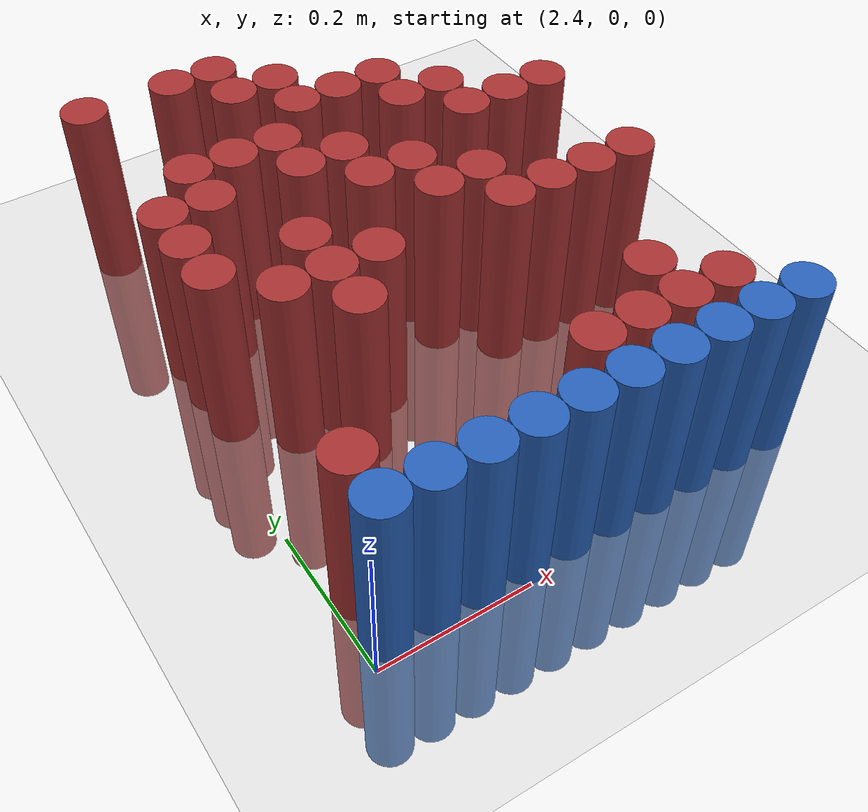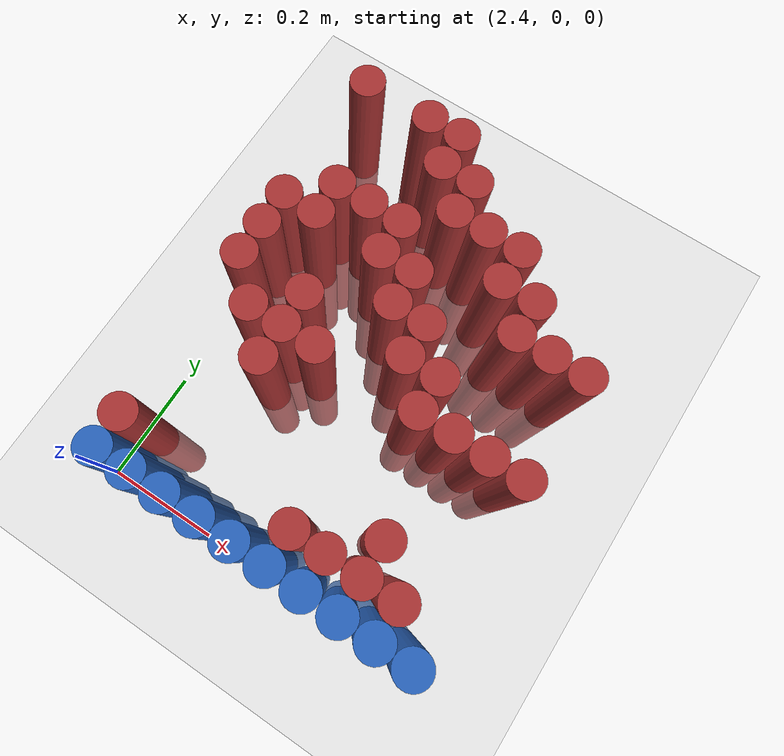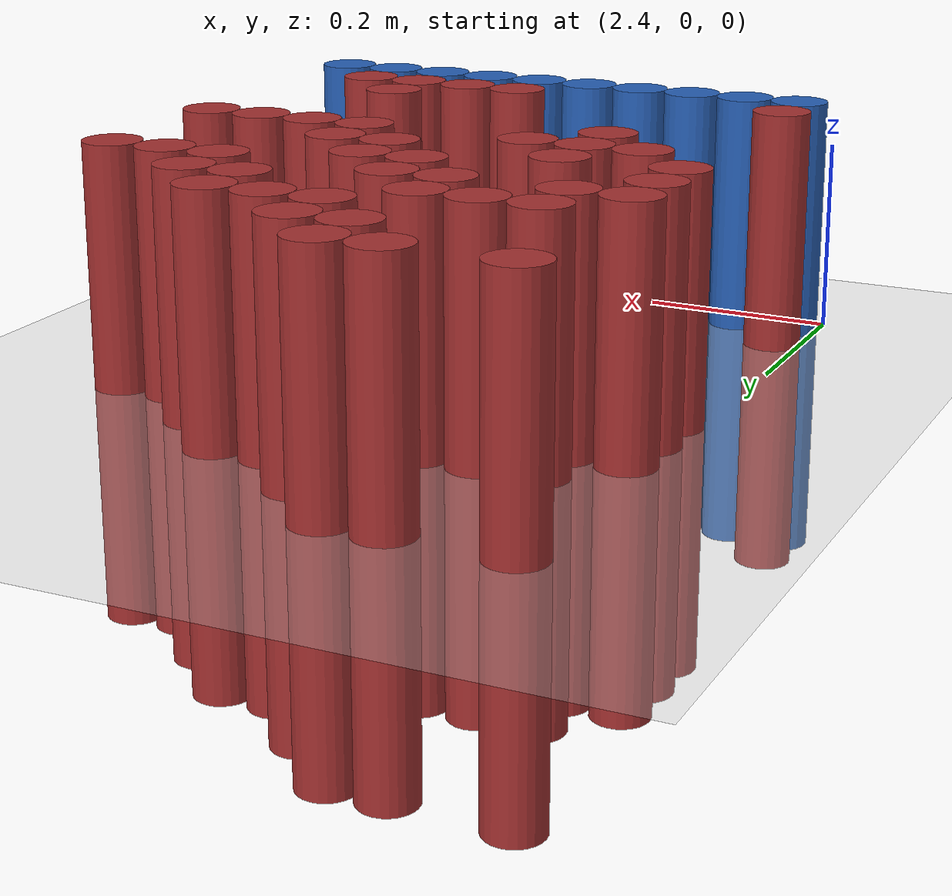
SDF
<sdf version="1.6">
 <world name="default">
  <model name="ground_plane">
   <static>1</static>
   <link name="link">
    <collision name="collision">
     <geometry><plane><normal>0 0 1</normal><size>100 100</size></plane></geometry>
     <surface><friction><ode><mu>100</mu><mu2>50</mu2></ode></friction></surface>
    </collision>
    <visual name="visual">
     <cast_shadows>0</cast_shadows>
     <geometry><plane><normal>0 0 1</normal><size>100 100</size></plane></geometry>
     <material>
      <script><uri>file://media/materials/scripts/gazebo.material</uri><name>Gazebo/Grey</name></script>
     </material>
    </visual>
   </link>
  </model>
  <model name="unit_cylinder_234">
   <static>1</static>
   <pose>2.430000 0.750000 0.000000 0.000000 0.000000 0.000000</pose>
   <link name="link">
    <inertial>
     <mass>1</mass>
     <inertia><ixx>0.145833</ixx><ixy>0</ixy><ixz>0</ixz><iyy>0.145833</iyy><iyz>0</iyz><izz>0.125</izz></inertia>
    </inertial>
    <collision name="collision">
     <geometry><cylinder><radius>0.030000</radius><length>0.5</length></cylinder></geometry>
    </collision>
    <visual name="visual">
     <geometry><cylinder><radius>0.030000</radius><length>0.5</length></cylinder></geometry>
     <material>
      <ambient>0.648000 0.192000 0.192000 1</ambient>
      <diffuse>0.648000 0.192000 0.192000 1</diffuse>
     </material>
     <material>
      <script><name>Gazebo/Grey</name><uri>file://media/materials/scripts/gazebo.material</uri></script>
     </material>
    </visual>
   </link>
  </model>
  <model name="unit_cylinder_235">
   <static>1</static>
   <pose>2.550000 0.750000 0.000000 0.000000 0.000000 0.000000</pose>
   <link name="link">
    <inertial>
     <mass>1</mass>
     <inertia><ixx>0.145833</ixx><ixy>0</ixy><ixz>0</ixz><iyy>0.145833</iyy><iyz>0</iyz><izz>0.125</izz></inertia>
    </inertial>
    <collision name="collision">
     <geometry><cylinder><radius>0.030000</radius><length>0.5</length></cylinder></geometry>
    </collision>
    <visual name="visual">
     <geometry><cylinder><radius>0.030000</radius><length>0.5</length></cylinder></geometry>
     <material>
      <ambient>0.648000 0.192000 0.192000 1</ambient>
      <diffuse>0.648000 0.192000 0.192000 1</diffuse>
     </material>
     <material>
      <script><name>Gazebo/Grey</name><uri>file://media/materials/scripts/gazebo.material</uri></script>
     </material>
    </visual>
   </link>
  </model>
  <model name="unit_cylinder_236">
   <static>1</static>
   <pose>2.610000 0.750000 0.000000 0.000000 0.000000 0.000000</pose>
   <link name="link">
    <inertial>
     <mass>1</mass>
     <inertia><ixx>0.145833</ixx><ixy>0</ixy><ixz>0</ixz><iyy>0.145833</iyy><iyz>0</iyz><izz>0.125</izz></inertia>
    </inertial>
    <collision name="collision">
     <geometry><cylinder><radius>0.030000</radius><length>0.5</length></cylinder></geometry>
    </collision>
    <visual name="visual">
     <geometry><cylinder><radius>0.030000</radius><length>0.5</length></cylinder></geometry>
     <material>
      <ambient>0.648000 0.192000 0.192000 1</ambient>
      <diffuse>0.648000 0.192000 0.192000 1</diffuse>
     </material>
     <material>
      <script><name>Gazebo/Grey</name><uri>file://media/materials/scripts/gazebo.material</uri></script>
     </material>
    </visual>
   </link>
  </model>
  <model name="unit_cylinder_238">
   <static>1</static>
   <pose>2.610000 0.690000 0.000000 0.000000 0.000000 0.000000</pose>
   <link name="link">
    <inertial>
     <mass>1</mass>
     <inertia><ixx>0.145833</ixx><ixy>0</ixy><ixz>0</ixz><iyy>0.145833</iyy><iyz>0</iyz><izz>0.125</izz></inertia>
    </inertial>
    <collision name="collision">
     <geometry><cylinder><radius>0.030000</radius><length>0.5</length></cylinder></geometry>
    </collision>
    <visual name="visual">
     <geometry><cylinder><radius>0.030000</radius><length>0.5</length></cylinder></geometry>
     <material>
      <ambient>0.648000 0.192000 0.192000 1</ambient>
      <diffuse>0.648000 0.192000 0.192000 1</diffuse>
     </material>
     <material>
      <script><name>Gazebo/Grey</name><uri>file://media/materials/scripts/gazebo.material</uri></script>
     </material>
    </visual>
   </link>
  </model>
  <model name="unit_cylinder_239">
   <static>1</static>
   <pose>2.670000 0.690000 0.000000 0.000000 0.000000 0.000000</pose>
   <link name="link">
    <inertial>
     <mass>1</mass>
     <inertia><ixx>0.145833</ixx><ixy>0</ixy><ixz>0</ixz><iyy>0.145833</iyy><iyz>0</iyz><izz>0.125</izz></inertia>
    </inertial>
    <collision name="collision">
     <geometry><cylinder><radius>0.030000</radius><length>0.5</length></cylinder></geometry>
    </collision>
    <visual name="visual">
     <geometry><cylinder><radius>0.030000</radius><length>0.5</length></cylinder></geometry>
     <material>
      <ambient>0.648000 0.192000 0.192000 1</ambient>
      <diffuse>0.648000 0.192000 0.192000 1</diffuse>
     </material>
     <material>
      <script><name>Gazebo/Grey</name><uri>file://media/materials/scripts/gazebo.material</uri></script>
     </material>
    </visual>
   </link>
  </model>
  <model name="unit_cylinder_244">
   <static>1</static>
   <pose>2.670000 0.630000 0.000000 0.000000 0.000000 0.000000</pose>
   <link name="link">
    <inertial>
     <mass>1</mass>
     <inertia><ixx>0.145833</ixx><ixy>0</ixy><ixz>0</ixz><iyy>0.145833</iyy><iyz>0</iyz><izz>0.125</izz></inertia>
    </inertial>
    <collision name="collision">
     <geometry><cylinder><radius>0.030000</radius><length>0.5</length></cylinder></geometry>
    </collision>
    <visual name="visual">
     <geometry><cylinder><radius>0.030000</radius><length>0.5</length></cylinder></geometry>
     <material>
      <ambient>0.648000 0.192000 0.192000 1</ambient>
      <diffuse>0.648000 0.192000 0.192000 1</diffuse>
     </material>
     <material>
      <script><name>Gazebo/Grey</name><uri>file://media/materials/scripts/gazebo.material</uri></script>
     </material>
    </visual>
   </link>
  </model>
  <model name="unit_cylinder_245">
   <static>1</static>
   <pose>2.730000 0.630000 0.000000 0.000000 0.000000 0.000000</pose>
   <link name="link">
    <inertial>
     <mass>1</mass>
     <inertia><ixx>0.145833</ixx><ixy>0</ixy><ixz>0</ixz><iyy>0.145833</iyy><iyz>0</iyz><izz>0.125</izz></inertia>
    </inertial>
    <collision name="collision">
     <geometry><cylinder><radius>0.030000</radius><length>0.5</length></cylinder></geometry>
    </collision>
    <visual name="visual">
     <geometry><cylinder><radius>0.030000</radius><length>0.5</length></cylinder></geometry>
     <material>
      <ambient>0.648000 0.192000 0.192000 1</ambient>
      <diffuse>0.648000 0.192000 0.192000 1</diffuse>
     </material>
     <material>
      <script><name>Gazebo/Grey</name><uri>file://media/materials/scripts/gazebo.material</uri></script>
     </material>
    </visual>
   </link>
  </model>
  <model name="unit_cylinder_246">
   <static>1</static>
   <pose>2.790000 0.630000 0.000000 0.000000 0.000000 0.000000</pose>
   <link name="link">
    <inertial>
     <mass>1</mass>
     <inertia><ixx>0.145833</ixx><ixy>0</ixy><ixz>0</ixz><iyy>0.145833</iyy><iyz>0</iyz><izz>0.125</izz></inertia>
    </inertial>
    <collision name="collision">
     <geometry><cylinder><radius>0.030000</radius><length>0.5</length></cylinder></geometry>
    </collision>
    <visual name="visual">
     <geometry><cylinder><radius>0.030000</radius><length>0.5</length></cylinder></geometry>
     <material>
      <ambient>0.648000 0.192000 0.192000 1</ambient>
      <diffuse>0.648000 0.192000 0.192000 1</diffuse>
     </material>
     <material>
      <script><name>Gazebo/Grey</name><uri>file://media/materials/scripts/gazebo.material</uri></script>
     </material>
    </visual>
   </link>
  </model>
  <model name="unit_cylinder_253">
   <static>1</static>
   <pose>2.490000 0.570000 0.000000 0.000000 0.000000 0.000000</pose>
   <link name="link">
    <inertial>
     <mass>1</mass>
     <inertia><ixx>0.145833</ixx><ixy>0</ixy><ixz>0</ixz><iyy>0.145833</iyy><iyz>0</iyz><izz>0.125</izz></inertia>
    </inertial>
    <collision name="collision">
     <geometry><cylinder><radius>0.030000</radius><length>0.5</length></cylinder></geometry>
    </collision>
    <visual name="visual">
     <geometry><cylinder><radius>0.030000</radius><length>0.5</length></cylinder></geometry>
     <material>
      <ambient>0.648000 0.192000 0.192000 1</ambient>
      <diffuse>0.648000 0.192000 0.192000 1</diffuse>
     </material>
     <material>
      <script><name>Gazebo/Grey</name><uri>file://media/materials/scripts/gazebo.material</uri></script>
     </material>
    </visual>
   </link>
  </model>
  <model name="unit_cylinder_254">
   <static>1</static>
   <pose>2.550000 0.570000 0.000000 0.000000 0.000000 0.000000</pose>
   <link name="link">
    <inertial>
     <mass>1</mass>
     <inertia><ixx>0.145833</ixx><ixy>0</ixy><ixz>0</ixz><iyy>0.145833</iyy><iyz>0</iyz><izz>0.125</izz></inertia>
    </inertial>
    <collision name="collision">
     <geometry><cylinder><radius>0.030000</radius><length>0.5</length></cylinder></geometry>
    </collision>
    <visual name="visual">
     <geometry><cylinder><radius>0.030000</radius><length>0.5</length></cylinder></geometry>
     <material>
      <ambient>0.648000 0.192000 0.192000 1</ambient>
      <diffuse>0.648000 0.192000 0.192000 1</diffuse>
     </material>
     <material>
      <script><name>Gazebo/Grey</name><uri>file://media/materials/scripts/gazebo.material</uri></script>
     </material>
    </visual>
   </link>
  </model>
  <model name="unit_cylinder_255">
   <static>1</static>
   <pose>2.610000 0.570000 0.000000 0.000000 0.000000 0.000000</pose>
   <link name="link">
    <inertial>
     <mass>1</mass>
     <inertia><ixx>0.145833</ixx><ixy>0</ixy><ixz>0</ixz><iyy>0.145833</iyy><iyz>0</iyz><izz>0.125</izz></inertia>
    </inertial>
    <collision name="collision">
     <geometry><cylinder><radius>0.030000</radius><length>0.5</length></cylinder></geometry>
    </collision>
    <visual name="visual">
     <geometry><cylinder><radius>0.030000</radius><length>0.5</length></cylinder></geometry>
     <material>
      <ambient>0.648000 0.192000 0.192000 1</ambient>
      <diffuse>0.648000 0.192000 0.192000 1</diffuse>
     </material>
     <material>
      <script><name>Gazebo/Grey</name><uri>file://media/materials/scripts/gazebo.material</uri></script>
     </material>
    </visual>
   </link>
  </model>
  <model name="unit_cylinder_256">
   <static>1</static>
   <pose>2.790000 0.570000 0.000000 0.000000 0.000000 0.000000</pose>
   <link name="link">
    <inertial>
     <mass>1</mass>
     <inertia><ixx>0.145833</ixx><ixy>0</ixy><ixz>0</ixz><iyy>0.145833</iyy><iyz>0</iyz><izz>0.125</izz></inertia>
    </inertial>
    <collision name="collision">
     <geometry><cylinder><radius>0.030000</radius><length>0.5</length></cylinder></geometry>
    </collision>
    <visual name="visual">
     <geometry><cylinder><radius>0.030000</radius><length>0.5</length></cylinder></geometry>
     <material>
      <ambient>0.648000 0.192000 0.192000 1</ambient>
      <diffuse>0.648000 0.192000 0.192000 1</diffuse>
     </material>
     <material>
      <script><name>Gazebo/Grey</name><uri>file://media/materials/scripts/gazebo.material</uri></script>
     </material>
    </visual>
   </link>
  </model>
  <model name="unit_cylinder_257">
   <static>1</static>
   <pose>2.850000 0.570000 0.000000 0.000000 0.000000 0.000000</pose>
   <link name="link">
    <inertial>
     <mass>1</mass>
     <inertia><ixx>0.145833</ixx><ixy>0</ixy><ixz>0</ixz><iyy>0.145833</iyy><iyz>0</iyz><izz>0.125</izz></inertia>
    </inertial>
    <collision name="collision">
     <geometry><cylinder><radius>0.030000</radius><length>0.5</length></cylinder></geometry>
    </collision>
    <visual name="visual">
     <geometry><cylinder><radius>0.030000</radius><length>0.5</length></cylinder></geometry>
     <material>
      <ambient>0.648000 0.192000 0.192000 1</ambient>
      <diffuse>0.648000 0.192000 0.192000 1</diffuse>
     </material>
     <material>
      <script><name>Gazebo/Grey</name><uri>file://media/materials/scripts/gazebo.material</uri></script>
     </material>
    </visual>
   </link>
  </model>
  <model name="unit_cylinder_264">
   <static>1</static>
   <pose>2.430000 0.510000 0.000000 0.000000 0.000000 0.000000</pose>
   <link name="link">
    <inertial>
     <mass>1</mass>
     <inertia><ixx>0.145833</ixx><ixy>0</ixy><ixz>0</ixz><iyy>0.145833</iyy><iyz>0</iyz><izz>0.125</izz></inertia>
    </inertial>
    <collision name="collision">
     <geometry><cylinder><radius>0.030000</radius><length>0.5</length></cylinder></geometry>
    </collision>
    <visual name="visual">
     <geometry><cylinder><radius>0.030000</radius><length>0.5</length></cylinder></geometry>
     <material>
      <ambient>0.648000 0.192000 0.192000 1</ambient>
      <diffuse>0.648000 0.192000 0.192000 1</diffuse>
     </material>
     <material>
      <script><name>Gazebo/Grey</name><uri>file://media/materials/scripts/gazebo.material</uri></script>
     </material>
    </visual>
   </link>
  </model>
  <model name="unit_cylinder_265">
   <static>1</static>
   <pose>2.490000 0.510000 0.000000 0.000000 0.000000 0.000000</pose>
   <link name="link">
    <inertial>
     <mass>1</mass>
     <inertia><ixx>0.145833</ixx><ixy>0</ixy><ixz>0</ixz><iyy>0.145833</iyy><iyz>0</iyz><izz>0.125</izz></inertia>
    </inertial>
    <collision name="collision">
     <geometry><cylinder><radius>0.030000</radius><length>0.5</length></cylinder></geometry>
    </collision>
    <visual name="visual">
     <geometry><cylinder><radius>0.030000</radius><length>0.5</length></cylinder></geometry>
     <material>
      <ambient>0.648000 0.192000 0.192000 1</ambient>
      <diffuse>0.648000 0.192000 0.192000 1</diffuse>
     </material>
     <material>
      <script><name>Gazebo/Grey</name><uri>file://media/materials/scripts/gazebo.material</uri></script>
     </material>
    </visual>
   </link>
  </model>
  <model name="unit_cylinder_266">
   <static>1</static>
   <pose>2.610000 0.510000 0.000000 0.000000 0.000000 0.000000</pose>
   <link name="link">
    <inertial>
     <mass>1</mass>
     <inertia><ixx>0.145833</ixx><ixy>0</ixy><ixz>0</ixz><iyy>0.145833</iyy><iyz>0</iyz><izz>0.125</izz></inertia>
    </inertial>
    <collision name="collision">
     <geometry><cylinder><radius>0.030000</radius><length>0.5</length></cylinder></geometry>
    </collision>
    <visual name="visual">
     <geometry><cylinder><radius>0.030000</radius><length>0.5</length></cylinder></geometry>
     <material>
      <ambient>0.648000 0.192000 0.192000 1</ambient>
      <diffuse>0.648000 0.192000 0.192000 1</diffuse>
     </material>
     <material>
      <script><name>Gazebo/Grey</name><uri>file://media/materials/scripts/gazebo.material</uri></script>
     </material>
    </visual>
   </link>
  </model>
  <model name="unit_cylinder_267">
   <static>1</static>
   <pose>2.670000 0.510000 0.000000 0.000000 0.000000 0.000000</pose>
   <link name="link">
    <inertial>
     <mass>1</mass>
     <inertia><ixx>0.145833</ixx><ixy>0</ixy><ixz>0</ixz><iyy>0.145833</iyy><iyz>0</iyz><izz>0.125</izz></inertia>
    </inertial>
    <collision name="collision">
     <geometry><cylinder><radius>0.030000</radius><length>0.5</length></cylinder></geometry>
    </collision>
    <visual name="visual">
     <geometry><cylinder><radius>0.030000</radius><length>0.5</length></cylinder></geometry>
     <material>
      <ambient>0.648000 0.192000 0.192000 1</ambient>
      <diffuse>0.648000 0.192000 0.192000 1</diffuse>
     </material>
     <material>
      <script><name>Gazebo/Grey</name><uri>file://media/materials/scripts/gazebo.material</uri></script>
     </material>
    </visual>
   </link>
  </model>
  <model name="unit_cylinder_268">
   <static>1</static>
   <pose>2.850000 0.510000 0.000000 0.000000 0.000000 0.000000</pose>
   <link name="link">
    <inertial>
     <mass>1</mass>
     <inertia><ixx>0.145833</ixx><ixy>0</ixy><ixz>0</ixz><iyy>0.145833</iyy><iyz>0</iyz><izz>0.125</izz></inertia>
    </inertial>
    <collision name="collision">
     <geometry><cylinder><radius>0.030000</radius><length>0.5</length></cylinder></geometry>
    </collision>
    <visual name="visual">
     <geometry><cylinder><radius>0.030000</radius><length>0.5</length></cylinder></geometry>
     <material>
      <ambient>0.648000 0.192000 0.192000 1</ambient>
      <diffuse>0.648000 0.192000 0.192000 1</diffuse>
     </material>
     <material>
      <script><name>Gazebo/Grey</name><uri>file://media/materials/scripts/gazebo.material</uri></script>
     </material>
    </visual>
   </link>
  </model>
  <model name="unit_cylinder_269">
   <static>1</static>
   <pose>2.910000 0.510000 0.000000 0.000000 0.000000 0.000000</pose>
   <link name="link">
    <inertial>
     <mass>1</mass>
     <inertia><ixx>0.145833</ixx><ixy>0</ixy><ixz>0</ixz><iyy>0.145833</iyy><iyz>0</iyz><izz>0.125</izz></inertia>
    </inertial>
    <collision name="collision">
     <geometry><cylinder><radius>0.030000</radius><length>0.5</length></cylinder></geometry>
    </collision>
    <visual name="visual">
     <geometry><cylinder><radius>0.030000</radius><length>0.5</length></cylinder></geometry>
     <material>
      <ambient>0.648000 0.192000 0.192000 1</ambient>
      <diffuse>0.648000 0.192000 0.192000 1</diffuse>
     </material>
     <material>
      <script><name>Gazebo/Grey</name><uri>file://media/materials/scripts/gazebo.material</uri></script>
     </material>
    </visual>
   </link>
  </model>
  <model name="unit_cylinder_270">
   <static>1</static>
   <pose>2.970000 0.510000 0.000000 0.000000 0.000000 0.000000</pose>
   <link name="link">
    <inertial>
     <mass>1</mass>
     <inertia><ixx>0.145833</ixx><ixy>0</ixy><ixz>0</ixz><iyy>0.145833</iyy><iyz>0</iyz><izz>0.125</izz></inertia>
    </inertial>
    <collision name="collision">
     <geometry><cylinder><radius>0.030000</radius><length>0.5</length></cylinder></geometry>
    </collision>
    <visual name="visual">
     <geometry><cylinder><radius>0.030000</radius><length>0.5</length></cylinder></geometry>
     <material>
      <ambient>0.648000 0.192000 0.192000 1</ambient>
      <diffuse>0.648000 0.192000 0.192000 1</diffuse>
     </material>
     <material>
      <script><name>Gazebo/Grey</name><uri>file://media/materials/scripts/gazebo.material</uri></script>
     </material>
    </visual>
   </link>
  </model>
  <model name="unit_cylinder_279">
   <static>1</static>
   <pose>2.430000 0.450000 0.000000 0.000000 0.000000 0.000000</pose>
   <link name="link">
    <inertial>
     <mass>1</mass>
     <inertia><ixx>0.145833</ixx><ixy>0</ixy><ixz>0</ixz><iyy>0.145833</iyy><iyz>0</iyz><izz>0.125</izz></inertia>
    </inertial>
    <collision name="collision">
     <geometry><cylinder><radius>0.030000</radius><length>0.5</length></cylinder></geometry>
    </collision>
    <visual name="visual">
     <geometry><cylinder><radius>0.030000</radius><length>0.5</length></cylinder></geometry>
     <material>
      <ambient>0.648000 0.192000 0.192000 1</ambient>
      <diffuse>0.648000 0.192000 0.192000 1</diffuse>
     </material>
     <material>
      <script><name>Gazebo/Grey</name><uri>file://media/materials/scripts/gazebo.material</uri></script>
     </material>
    </visual>
   </link>
  </model>
  <model name="unit_cylinder_280">
   <static>1</static>
   <pose>2.670000 0.450000 0.000000 0.000000 0.000000 0.000000</pose>
   <link name="link">
    <inertial>
     <mass>1</mass>
     <inertia><ixx>0.145833</ixx><ixy>0</ixy><ixz>0</ixz><iyy>0.145833</iyy><iyz>0</iyz><izz>0.125</izz></inertia>
    </inertial>
    <collision name="collision">
     <geometry><cylinder><radius>0.030000</radius><length>0.5</length></cylinder></geometry>
    </collision>
    <visual name="visual">
     <geometry><cylinder><radius>0.030000</radius><length>0.5</length></cylinder></geometry>
     <material>
      <ambient>0.648000 0.192000 0.192000 1</ambient>
      <diffuse>0.648000 0.192000 0.192000 1</diffuse>
     </material>
     <material>
      <script><name>Gazebo/Grey</name><uri>file://media/materials/scripts/gazebo.material</uri></script>
     </material>
    </visual>
   </link>
  </model>
  <model name="unit_cylinder_281">
   <static>1</static>
   <pose>2.730000 0.450000 0.000000 0.000000 0.000000 0.000000</pose>
   <link name="link">
    <inertial>
     <mass>1</mass>
     <inertia><ixx>0.145833</ixx><ixy>0</ixy><ixz>0</ixz><iyy>0.145833</iyy><iyz>0</iyz><izz>0.125</izz></inertia>
    </inertial>
    <collision name="collision">
     <geometry><cylinder><radius>0.030000</radius><length>0.5</length></cylinder></geometry>
    </collision>
    <visual name="visual">
     <geometry><cylinder><radius>0.030000</radius><length>0.5</length></cylinder></geometry>
     <material>
      <ambient>0.648000 0.192000 0.192000 1</ambient>
      <diffuse>0.648000 0.192000 0.192000 1</diffuse>
     </material>
     <material>
      <script><name>Gazebo/Grey</name><uri>file://media/materials/scripts/gazebo.material</uri></script>
     </material>
    </visual>
   </link>
  </model>
  <model name="unit_cylinder_289">
   <static>1</static>
   <pose>2.430000 0.390000 0.000000 0.000000 0.000000 0.000000</pose>
   <link name="link">
    <inertial>
     <mass>1</mass>
     <inertia><ixx>0.145833</ixx><ixy>0</ixy><ixz>0</ixz><iyy>0.145833</iyy><iyz>0</iyz><izz>0.125</izz></inertia>
    </inertial>
    <collision name="collision">
     <geometry><cylinder><radius>0.030000</radius><length>0.5</length></cylinder></geometry>
    </collision>
    <visual name="visual">
     <geometry><cylinder><radius>0.030000</radius><length>0.5</length></cylinder></geometry>
     <material>
      <ambient>0.648000 0.192000 0.192000 1</ambient>
      <diffuse>0.648000 0.192000 0.192000 1</diffuse>
     </material>
     <material>
      <script><name>Gazebo/Grey</name><uri>file://media/materials/scripts/gazebo.material</uri></script>
     </material>
    </visual>
   </link>
  </model>
  <model name="unit_cylinder_290">
   <static>1</static>
   <pose>2.550000 0.390000 0.000000 0.000000 0.000000 0.000000</pose>
   <link name="link">
    <inertial>
     <mass>1</mass>
     <inertia><ixx>0.145833</ixx><ixy>0</ixy><ixz>0</ixz><iyy>0.145833</iyy><iyz>0</iyz><izz>0.125</izz></inertia>
    </inertial>
    <collision name="collision">
     <geometry><cylinder><radius>0.030000</radius><length>0.5</length></cylinder></geometry>
    </collision>
    <visual name="visual">
     <geometry><cylinder><radius>0.030000</radius><length>0.5</length></cylinder></geometry>
     <material>
      <ambient>0.648000 0.192000 0.192000 1</ambient>
      <diffuse>0.648000 0.192000 0.192000 1</diffuse>
     </material>
     <material>
      <script><name>Gazebo/Grey</name><uri>file://media/materials/scripts/gazebo.material</uri></script>
     </material>
    </visual>
   </link>
  </model>
  <model name="unit_cylinder_291">
   <static>1</static>
   <pose>2.730000 0.390000 0.000000 0.000000 0.000000 0.000000</pose>
   <link name="link">
    <inertial>
     <mass>1</mass>
     <inertia><ixx>0.145833</ixx><ixy>0</ixy><ixz>0</ixz><iyy>0.145833</iyy><iyz>0</iyz><izz>0.125</izz></inertia>
    </inertial>
    <collision name="collision">
     <geometry><cylinder><radius>0.030000</radius><length>0.5</length></cylinder></geometry>
    </collision>
    <visual name="visual">
     <geometry><cylinder><radius>0.030000</radius><length>0.5</length></cylinder></geometry>
     <material>
      <ambient>0.648000 0.192000 0.192000 1</ambient>
      <diffuse>0.648000 0.192000 0.192000 1</diffuse>
     </material>
     <material>
      <script><name>Gazebo/Grey</name><uri>file://media/materials/scripts/gazebo.material</uri></script>
     </material>
    </visual>
   </link>
  </model>
  <model name="unit_cylinder_292">
   <static>1</static>
   <pose>2.790000 0.390000 0.000000 0.000000 0.000000 0.000000</pose>
   <link name="link">
    <inertial>
     <mass>1</mass>
     <inertia><ixx>0.145833</ixx><ixy>0</ixy><ixz>0</ixz><iyy>0.145833</iyy><iyz>0</iyz><izz>0.125</izz></inertia>
    </inertial>
    <collision name="collision">
     <geometry><cylinder><radius>0.030000</radius><length>0.5</length></cylinder></geometry>
    </collision>
    <visual name="visual">
     <geometry><cylinder><radius>0.030000</radius><length>0.5</length></cylinder></geometry>
     <material>
      <ambient>0.648000 0.192000 0.192000 1</ambient>
      <diffuse>0.648000 0.192000 0.192000 1</diffuse>
     </material>
     <material>
      <script><name>Gazebo/Grey</name><uri>file://media/materials/scripts/gazebo.material</uri></script>
     </material>
    </visual>
   </link>
  </model>
  <model name="unit_cylinder_297">
   <static>1</static>
   <pose>2.490000 0.330000 0.000000 0.000000 0.000000 0.000000</pose>
   <link name="link">
    <inertial>
     <mass>1</mass>
     <inertia><ixx>0.145833</ixx><ixy>0</ixy><ixz>0</ixz><iyy>0.145833</iyy><iyz>0</iyz><izz>0.125</izz></inertia>
    </inertial>
    <collision name="collision">
     <geometry><cylinder><radius>0.030000</radius><length>0.5</length></cylinder></geometry>
    </collision>
    <visual name="visual">
     <geometry><cylinder><radius>0.030000</radius><length>0.5</length></cylinder></geometry>
     <material>
      <ambient>0.648000 0.192000 0.192000 1</ambient>
      <diffuse>0.648000 0.192000 0.192000 1</diffuse>
     </material>
     <material>
      <script><name>Gazebo/Grey</name><uri>file://media/materials/scripts/gazebo.material</uri></script>
     </material>
    </visual>
   </link>
  </model>
  <model name="unit_cylinder_298">
   <static>1</static>
   <pose>2.550000 0.330000 0.000000 0.000000 0.000000 0.000000</pose>
   <link name="link">
    <inertial>
     <mass>1</mass>
     <inertia><ixx>0.145833</ixx><ixy>0</ixy><ixz>0</ixz><iyy>0.145833</iyy><iyz>0</iyz><izz>0.125</izz></inertia>
    </inertial>
    <collision name="collision">
     <geometry><cylinder><radius>0.030000</radius><length>0.5</length></cylinder></geometry>
    </collision>
    <visual name="visual">
     <geometry><cylinder><radius>0.030000</radius><length>0.5</length></cylinder></geometry>
     <material>
      <ambient>0.648000 0.192000 0.192000 1</ambient>
      <diffuse>0.648000 0.192000 0.192000 1</diffuse>
     </material>
     <material>
      <script><name>Gazebo/Grey</name><uri>file://media/materials/scripts/gazebo.material</uri></script>
     </material>
    </visual>
   </link>
  </model>
  <model name="unit_cylinder_299">
   <static>1</static>
   <pose>2.610000 0.330000 0.000000 0.000000 0.000000 0.000000</pose>
   <link name="link">
    <inertial>
     <mass>1</mass>
     <inertia><ixx>0.145833</ixx><ixy>0</ixy><ixz>0</ixz><iyy>0.145833</iyy><iyz>0</iyz><izz>0.125</izz></inertia>
    </inertial>
    <collision name="collision">
     <geometry><cylinder><radius>0.030000</radius><length>0.5</length></cylinder></geometry>
    </collision>
    <visual name="visual">
     <geometry><cylinder><radius>0.030000</radius><length>0.5</length></cylinder></geometry>
     <material>
      <ambient>0.648000 0.192000 0.192000 1</ambient>
      <diffuse>0.648000 0.192000 0.192000 1</diffuse>
     </material>
     <material>
      <script><name>Gazebo/Grey</name><uri>file://media/materials/scripts/gazebo.material</uri></script>
     </material>
    </visual>
   </link>
  </model>
  <model name="unit_cylinder_300">
   <static>1</static>
   <pose>2.790000 0.330000 0.000000 0.000000 0.000000 0.000000</pose>
   <link name="link">
    <inertial>
     <mass>1</mass>
     <inertia><ixx>0.145833</ixx><ixy>0</ixy><ixz>0</ixz><iyy>0.145833</iyy><iyz>0</iyz><izz>0.125</izz></inertia>
    </inertial>
    <collision name="collision">
     <geometry><cylinder><radius>0.030000</radius><length>0.5</length></cylinder></geometry>
    </collision>
    <visual name="visual">
     <geometry><cylinder><radius>0.030000</radius><length>0.5</length></cylinder></geometry>
     <material>
      <ambient>0.648000 0.192000 0.192000 1</ambient>
      <diffuse>0.648000 0.192000 0.192000 1</diffuse>
     </material>
     <material>
      <script><name>Gazebo/Grey</name><uri>file://media/materials/scripts/gazebo.material</uri></script>
     </material>
    </visual>
   </link>
  </model>
  <model name="unit_cylinder_301">
   <static>1</static>
   <pose>2.850000 0.330000 0.000000 0.000000 0.000000 0.000000</pose>
   <link name="link">
    <inertial>
     <mass>1</mass>
     <inertia><ixx>0.145833</ixx><ixy>0</ixy><ixz>0</ixz><iyy>0.145833</iyy><iyz>0</iyz><izz>0.125</izz></inertia>
    </inertial>
    <collision name="collision">
     <geometry><cylinder><radius>0.030000</radius><length>0.5</length></cylinder></geometry>
    </collision>
    <visual name="visual">
     <geometry><cylinder><radius>0.030000</radius><length>0.5</length></cylinder></geometry>
     <material>
      <ambient>0.648000 0.192000 0.192000 1</ambient>
      <diffuse>0.648000 0.192000 0.192000 1</diffuse>
     </material>
     <material>
      <script><name>Gazebo/Grey</name><uri>file://media/materials/scripts/gazebo.material</uri></script>
     </material>
    </visual>
   </link>
  </model>
  <model name="unit_cylinder_302">
   <static>1</static>
   <pose>2.910000 0.330000 0.000000 0.000000 0.000000 0.000000</pose>
   <link name="link">
    <inertial>
     <mass>1</mass>
     <inertia><ixx>0.145833</ixx><ixy>0</ixy><ixz>0</ixz><iyy>0.145833</iyy><iyz>0</iyz><izz>0.125</izz></inertia>
    </inertial>
    <collision name="collision">
     <geometry><cylinder><radius>0.030000</radius><length>0.5</length></cylinder></geometry>
    </collision>
    <visual name="visual">
     <geometry><cylinder><radius>0.030000</radius><length>0.5</length></cylinder></geometry>
     <material>
      <ambient>0.648000 0.192000 0.192000 1</ambient>
      <diffuse>0.648000 0.192000 0.192000 1</diffuse>
     </material>
     <material>
      <script><name>Gazebo/Grey</name><uri>file://media/materials/scripts/gazebo.material</uri></script>
     </material>
    </visual>
   </link>
  </model>
  <model name="unit_cylinder_303">
   <static>1</static>
   <pose>2.970000 0.330000 0.000000 0.000000 0.000000 0.000000</pose>
   <link name="link">
    <inertial>
     <mass>1</mass>
     <inertia><ixx>0.145833</ixx><ixy>0</ixy><ixz>0</ixz><iyy>0.145833</iyy><iyz>0</iyz><izz>0.125</izz></inertia>
    </inertial>
    <collision name="collision">
     <geometry><cylinder><radius>0.030000</radius><length>0.5</length></cylinder></geometry>
    </collision>
    <visual name="visual">
     <geometry><cylinder><radius>0.030000</radius><length>0.5</length></cylinder></geometry>
     <material>
      <ambient>0.648000 0.192000 0.192000 1</ambient>
      <diffuse>0.648000 0.192000 0.192000 1</diffuse>
     </material>
     <material>
      <script><name>Gazebo/Grey</name><uri>file://media/materials/scripts/gazebo.material</uri></script>
     </material>
    </visual>
   </link>
  </model>
  <model name="unit_cylinder_309">
   <static>1</static>
   <pose>2.550000 0.270000 0.000000 0.000000 0.000000 0.000000</pose>
   <link name="link">
    <inertial>
     <mass>1</mass>
     <inertia><ixx>0.145833</ixx><ixy>0</ixy><ixz>0</ixz><iyy>0.145833</iyy><iyz>0</iyz><izz>0.125</izz></inertia>
    </inertial>
    <collision name="collision">
     <geometry><cylinder><radius>0.030000</radius><length>0.5</length></cylinder></geometry>
    </collision>
    <visual name="visual">
     <geometry><cylinder><radius>0.030000</radius><length>0.5</length></cylinder></geometry>
     <material>
      <ambient>0.648000 0.192000 0.192000 1</ambient>
      <diffuse>0.648000 0.192000 0.192000 1</diffuse>
     </material>
     <material>
      <script><name>Gazebo/Grey</name><uri>file://media/materials/scripts/gazebo.material</uri></script>
     </material>
    </visual>
   </link>
  </model>
  <model name="unit_cylinder_316">
   <static>1</static>
   <pose>2.850000 0.150000 0.000000 0.000000 0.000000 0.000000</pose>
   <link name="link">
    <inertial>
     <mass>1</mass>
     <inertia><ixx>0.145833</ixx><ixy>0</ixy><ixz>0</ixz><iyy>0.145833</iyy><iyz>0</iyz><izz>0.125</izz></inertia>
    </inertial>
    <collision name="collision">
     <geometry><cylinder><radius>0.030000</radius><length>0.5</length></cylinder></geometry>
    </collision>
    <visual name="visual">
     <geometry><cylinder><radius>0.030000</radius><length>0.5</length></cylinder></geometry>
     <material>
      <ambient>0.648000 0.192000 0.192000 1</ambient>
      <diffuse>0.648000 0.192000 0.192000 1</diffuse>
     </material>
     <material>
      <script><name>Gazebo/Grey</name><uri>file://media/materials/scripts/gazebo.material</uri></script>
     </material>
    </visual>
   </link>
  </model>
  <model name="unit_cylinder_320">
   <static>1</static>
   <pose>2.430000 0.090000 0.000000 0.000000 0.000000 0.000000</pose>
   <link name="link">
    <inertial>
     <mass>1</mass>
     <inertia><ixx>0.145833</ixx><ixy>0</ixy><ixz>0</ixz><iyy>0.145833</iyy><iyz>0</iyz><izz>0.125</izz></inertia>
    </inertial>
    <collision name="collision">
     <geometry><cylinder><radius>0.030000</radius><length>0.5</length></cylinder></geometry>
    </collision>
    <visual name="visual">
     <geometry><cylinder><radius>0.030000</radius><length>0.5</length></cylinder></geometry>
     <material>
      <ambient>0.648000 0.192000 0.192000 1</ambient>
      <diffuse>0.648000 0.192000 0.192000 1</diffuse>
     </material>
     <material>
      <script><name>Gazebo/Grey</name><uri>file://media/materials/scripts/gazebo.material</uri></script>
     </material>
    </visual>
   </link>
  </model>
  <model name="unit_cylinder_321">
   <static>1</static>
   <pose>2.730000 0.090000 0.000000 0.000000 0.000000 0.000000</pose>
   <link name="link">
    <inertial>
     <mass>1</mass>
     <inertia><ixx>0.145833</ixx><ixy>0</ixy><ixz>0</ixz><iyy>0.145833</iyy><iyz>0</iyz><izz>0.125</izz></inertia>
    </inertial>
    <collision name="collision">
     <geometry><cylinder><radius>0.030000</radius><length>0.5</length></cylinder></geometry>
    </collision>
    <visual name="visual">
     <geometry><cylinder><radius>0.030000</radius><length>0.5</length></cylinder></geometry>
     <material>
      <ambient>0.648000 0.192000 0.192000 1</ambient>
      <diffuse>0.648000 0.192000 0.192000 1</diffuse>
     </material>
     <material>
      <script><name>Gazebo/Grey</name><uri>file://media/materials/scripts/gazebo.material</uri></script>
     </material>
    </visual>
   </link>
  </model>
  <model name="unit_cylinder_322">
   <static>1</static>
   <pose>2.790000 0.090000 0.000000 0.000000 0.000000 0.000000</pose>
   <link name="link">
    <inertial>
     <mass>1</mass>
     <inertia><ixx>0.145833</ixx><ixy>0</ixy><ixz>0</ixz><iyy>0.145833</iyy><iyz>0</iyz><izz>0.125</izz></inertia>
    </inertial>
    <collision name="collision">
     <geometry><cylinder><radius>0.030000</radius><length>0.5</length></cylinder></geometry>
    </collision>
    <visual name="visual">
     <geometry><cylinder><radius>0.030000</radius><length>0.5</length></cylinder></geometry>
     <material>
      <ambient>0.648000 0.192000 0.192000 1</ambient>
      <diffuse>0.648000 0.192000 0.192000 1</diffuse>
     </material>
     <material>
      <script><name>Gazebo/Grey</name><uri>file://media/materials/scripts/gazebo.material</uri></script>
     </material>
    </visual>
   </link>
  </model>
  <model name="unit_cylinder_323">
   <static>1</static>
   <pose>2.850000 0.090000 0.000000 0.000000 0.000000 0.000000</pose>
   <link name="link">
    <inertial>
     <mass>1</mass>
     <inertia><ixx>0.145833</ixx><ixy>0</ixy><ixz>0</ixz><iyy>0.145833</iyy><iyz>0</iyz><izz>0.125</izz></inertia>
    </inertial>
    <collision name="collision">
     <geometry><cylinder><radius>0.030000</radius><length>0.5</length></cylinder></geometry>
    </collision>
    <visual name="visual">
     <geometry><cylinder><radius>0.030000</radius><length>0.5</length></cylinder></geometry>
     <material>
      <ambient>0.648000 0.192000 0.192000 1</ambient>
      <diffuse>0.648000 0.192000 0.192000 1</diffuse>
     </material>
     <material>
      <script><name>Gazebo/Grey</name><uri>file://media/materials/scripts/gazebo.material</uri></script>
     </material>
    </visual>
   </link>
  </model>
  <model name="unit_cylinder_324">
   <static>1</static>
   <pose>2.910000 0.090000 0.000000 0.000000 0.000000 0.000000</pose>
   <link name="link">
    <inertial>
     <mass>1</mass>
     <inertia><ixx>0.145833</ixx><ixy>0</ixy><ixz>0</ixz><iyy>0.145833</iyy><iyz>0</iyz><izz>0.125</izz></inertia>
    </inertial>
    <collision name="collision">
     <geometry><cylinder><radius>0.030000</radius><length>0.5</length></cylinder></geometry>
    </collision>
    <visual name="visual">
     <geometry><cylinder><radius>0.030000</radius><length>0.5</length></cylinder></geometry>
     <material>
      <ambient>0.648000 0.192000 0.192000 1</ambient>
      <diffuse>0.648000 0.192000 0.192000 1</diffuse>
     </material>
     <material>
      <script><name>Gazebo/Grey</name><uri>file://media/materials/scripts/gazebo.material</uri></script>
     </material>
    </visual>
   </link>
  </model>
  <model name="unit_cylinder_338">
   <static>1</static>
   <pose>2.430000 0.030000 0.000000 0.000000 0.000000 0.000000</pose>
   <link name="link">
    <inertial>
     <mass>1</mass>
     <inertia><ixx>0.145833</ixx><ixy>0</ixy><ixz>0</ixz><iyy>0.145833</iyy><iyz>0</iyz><izz>0.125</izz></inertia>
    </inertial>
    <collision name="collision">
     <geometry><cylinder><radius>0.030000</radius><length>0.5</length></cylinder></geometry>
    </collision>
    <visual name="visual">
     <geometry><cylinder><radius>0.030000</radius><length>0.5</length></cylinder></geometry>
     <material>
      <ambient>0.152000 0.379000 0.720000 1</ambient>
      <diffuse>0.152000 0.379000 0.720000 1</diffuse>
     </material>
     <material>
      <script><name>Gazebo/Grey</name><uri>file://media/materials/scripts/gazebo.material</uri></script>
     </material>
    </visual>
   </link>
  </model>
  <model name="unit_cylinder_339">
   <static>1</static>
   <pose>2.490000 0.030000 0.000000 0.000000 0.000000 0.000000</pose>
   <link name="link">
    <inertial>
     <mass>1</mass>
     <inertia><ixx>0.145833</ixx><ixy>0</ixy><ixz>0</ixz><iyy>0.145833</iyy><iyz>0</iyz><izz>0.125</izz></inertia>
    </inertial>
    <collision name="collision">
     <geometry><cylinder><radius>0.030000</radius><length>0.5</length></cylinder></geometry>
    </collision>
    <visual name="visual">
     <geometry><cylinder><radius>0.030000</radius><length>0.5</length></cylinder></geometry>
     <material>
      <ambient>0.152000 0.379000 0.720000 1</ambient>
      <diffuse>0.152000 0.379000 0.720000 1</diffuse>
     </material>
     <material>
      <script><name>Gazebo/Grey</name><uri>file://media/materials/scripts/gazebo.material</uri></script>
     </material>
    </visual>
   </link>
  </model>
  <model name="unit_cylinder_340">
   <static>1</static>
   <pose>2.550000 0.030000 0.000000 0.000000 0.000000 0.000000</pose>
   <link name="link">
    <inertial>
     <mass>1</mass>
     <inertia><ixx>0.145833</ixx><ixy>0</ixy><ixz>0</ixz><iyy>0.145833</iyy><iyz>0</iyz><izz>0.125</izz></inertia>
    </inertial>
    <collision name="collision">
     <geometry><cylinder><radius>0.030000</radius><length>0.5</length></cylinder></geometry>
    </collision>
    <visual name="visual">
     <geometry><cylinder><radius>0.030000</radius><length>0.5</length></cylinder></geometry>
     <material>
      <ambient>0.152000 0.379000 0.720000 1</ambient>
      <diffuse>0.152000 0.379000 0.720000 1</diffuse>
     </material>
     <material>
      <script><name>Gazebo/Grey</name><uri>file://media/materials/scripts/gazebo.material</uri></script>
     </material>
    </visual>
   </link>
  </model>
  <model name="unit_cylinder_341">
   <static>1</static>
   <pose>2.610000 0.030000 0.000000 0.000000 0.000000 0.000000</pose>
   <link name="link">
    <inertial>
     <mass>1</mass>
     <inertia><ixx>0.145833</ixx><ixy>0</ixy><ixz>0</ixz><iyy>0.145833</iyy><iyz>0</iyz><izz>0.125</izz></inertia>
    </inertial>
    <collision name="collision">
     <geometry><cylinder><radius>0.030000</radius><length>0.5</length></cylinder></geometry>
    </collision>
    <visual name="visual">
     <geometry><cylinder><radius>0.030000</radius><length>0.5</length></cylinder></geometry>
     <material>
      <ambient>0.152000 0.379000 0.720000 1</ambient>
      <diffuse>0.152000 0.379000 0.720000 1</diffuse>
     </material>
     <material>
      <script><name>Gazebo/Grey</name><uri>file://media/materials/scripts/gazebo.material</uri></script>
     </material>
    </visual>
   </link>
  </model>
  <model name="unit_cylinder_342">
   <static>1</static>
   <pose>2.670000 0.030000 0.000000 0.000000 0.000000 0.000000</pose>
   <link name="link">
    <inertial>
     <mass>1</mass>
     <inertia><ixx>0.145833</ixx><ixy>0</ixy><ixz>0</ixz><iyy>0.145833</iyy><iyz>0</iyz><izz>0.125</izz></inertia>
    </inertial>
    <collision name="collision">
     <geometry><cylinder><radius>0.030000</radius><length>0.5</length></cylinder></geometry>
    </collision>
    <visual name="visual">
     <geometry><cylinder><radius>0.030000</radius><length>0.5</length></cylinder></geometry>
     <material>
      <ambient>0.152000 0.379000 0.720000 1</ambient>
      <diffuse>0.152000 0.379000 0.720000 1</diffuse>
     </material>
     <material>
      <script><name>Gazebo/Grey</name><uri>file://media/materials/scripts/gazebo.material</uri></script>
     </material>
    </visual>
   </link>
  </model>
  <model name="unit_cylinder_343">
   <static>1</static>
   <pose>2.730000 0.030000 0.000000 0.000000 0.000000 0.000000</pose>
   <link name="link">
    <inertial>
     <mass>1</mass>
     <inertia><ixx>0.145833</ixx><ixy>0</ixy><ixz>0</ixz><iyy>0.145833</iyy><iyz>0</iyz><izz>0.125</izz></inertia>
    </inertial>
    <collision name="collision">
     <geometry><cylinder><radius>0.030000</radius><length>0.5</length></cylinder></geometry>
    </collision>
    <visual name="visual">
     <geometry><cylinder><radius>0.030000</radius><length>0.5</length></cylinder></geometry>
     <material>
      <ambient>0.152000 0.379000 0.720000 1</ambient>
      <diffuse>0.152000 0.379000 0.720000 1</diffuse>
     </material>
     <material>
      <script><name>Gazebo/Grey</name><uri>file://media/materials/scripts/gazebo.material</uri></script>
     </material>
    </visual>
   </link>
  </model>
  <model name="unit_cylinder_344">
   <static>1</static>
   <pose>2.790000 0.030000 0.000000 0.000000 0.000000 0.000000</pose>
   <link name="link">
    <inertial>
     <mass>1</mass>
     <inertia><ixx>0.145833</ixx><ixy>0</ixy><ixz>0</ixz><iyy>0.145833</iyy><iyz>0</iyz><izz>0.125</izz></inertia>
    </inertial>
    <collision name="collision">
     <geometry><cylinder><radius>0.030000</radius><length>0.5</length></cylinder></geometry>
    </collision>
    <visual name="visual">
     <geometry><cylinder><radius>0.030000</radius><length>0.5</length></cylinder></geometry>
     <material>
      <ambient>0.152000 0.379000 0.720000 1</ambient>
      <diffuse>0.152000 0.379000 0.720000 1</diffuse>
     </material>
     <material>
      <script><name>Gazebo/Grey</name><uri>file://media/materials/scripts/gazebo.material</uri></script>
     </material>
    </visual>
   </link>
  </model>
  <model name="unit_cylinder_345">
   <static>1</static>
   <pose>2.850000 0.030000 0.000000 0.000000 0.000000 0.000000</pose>
   <link name="link">
    <inertial>
     <mass>1</mass>
     <inertia><ixx>0.145833</ixx><ixy>0</ixy><ixz>0</ixz><iyy>0.145833</iyy><iyz>0</iyz><izz>0.125</izz></inertia>
    </inertial>
    <collision name="collision">
     <geometry><cylinder><radius>0.030000</radius><length>0.5</length></cylinder></geometry>
    </collision>
    <visual name="visual">
     <geometry><cylinder><radius>0.030000</radius><length>0.5</length></cylinder></geometry>
     <material>
      <ambient>0.152000 0.379000 0.720000 1</ambient>
      <diffuse>0.152000 0.379000 0.720000 1</diffuse>
     </material>
     <material>
      <script><name>Gazebo/Grey</name><uri>file://media/materials/scripts/gazebo.material</uri></script>
     </material>
    </visual>
   </link>
  </model>
  <model name="unit_cylinder_346">
   <static>1</static>
   <pose>2.910000 0.030000 0.000000 0.000000 0.000000 0.000000</pose>
   <link name="link">
    <inertial>
     <mass>1</mass>
     <inertia><ixx>0.145833</ixx><ixy>0</ixy><ixz>0</ixz><iyy>0.145833</iyy><iyz>0</iyz><izz>0.125</izz></inertia>
    </inertial>
    <collision name="collision">
     <geometry><cylinder><radius>0.030000</radius><length>0.5</length></cylinder></geometry>
    </collision>
    <visual name="visual">
     <geometry><cylinder><radius>0.030000</radius><length>0.5</length></cylinder></geometry>
     <material>
      <ambient>0.152000 0.379000 0.720000 1</ambient>
      <diffuse>0.152000 0.379000 0.720000 1</diffuse>
     </material>
     <material>
      <script><name>Gazebo/Grey</name><uri>file://media/materials/scripts/gazebo.material</uri></script>
     </material>
    </visual>
   </link>
  </model>
  <model name="unit_cylinder_347">
   <static>1</static>
   <pose>2.970000 0.030000 0.000000 0.000000 0.000000 0.000000</pose>
   <link name="link">
    <inertial>
     <mass>1</mass>
     <inertia><ixx>0.145833</ixx><ixy>0</ixy><ixz>0</ixz><iyy>0.145833</iyy><iyz>0</iyz><izz>0.125</izz></inertia>
    </inertial>
    <collision name="collision">
     <geometry><cylinder><radius>0.030000</radius><length>0.5</length></cylinder></geometry>
    </collision>
    <visual name="visual">
     <geometry><cylinder><radius>0.030000</radius><length>0.5</length></cylinder></geometry>
     <material>
      <ambient>0.152000 0.379000 0.720000 1</ambient>
      <diffuse>0.152000 0.379000 0.720000 1</diffuse>
     </material>
     <material>
      <script><name>Gazebo/Grey</name><uri>file://media/materials/scripts/gazebo.material</uri></script>
     </material>
    </visual>
   </link>
  </model>
 </world>
</sdf>
